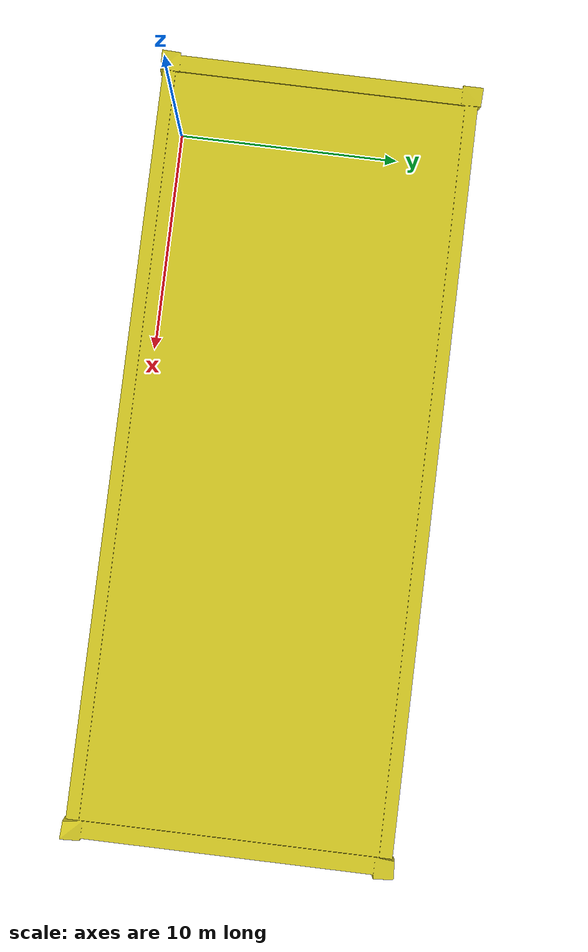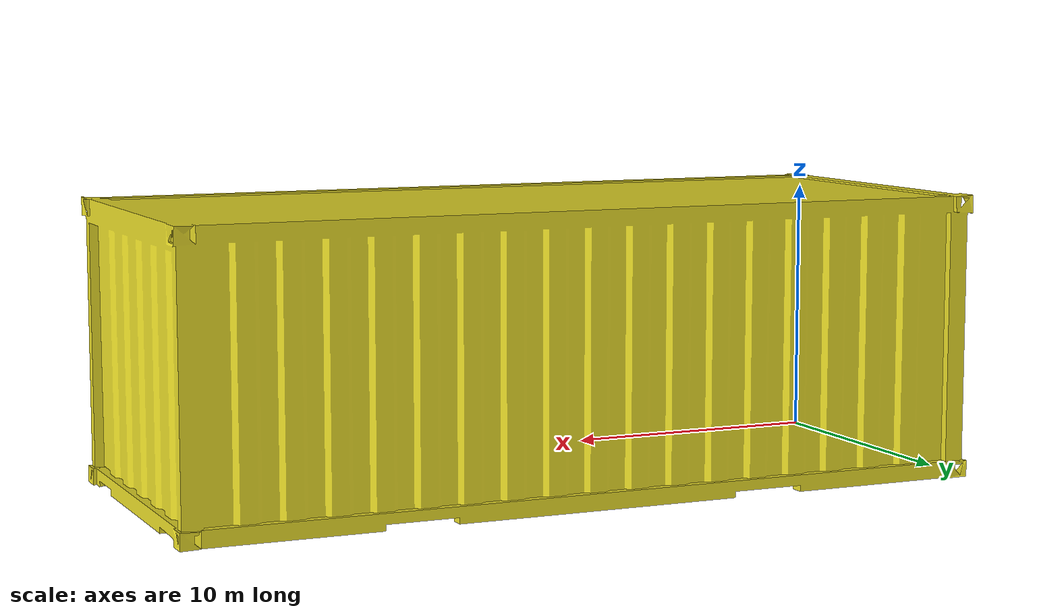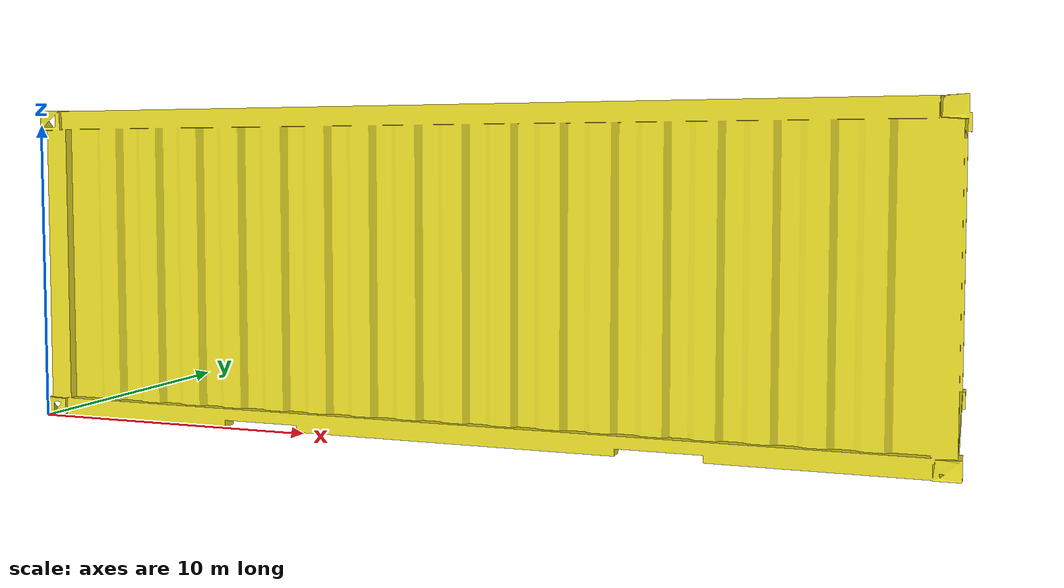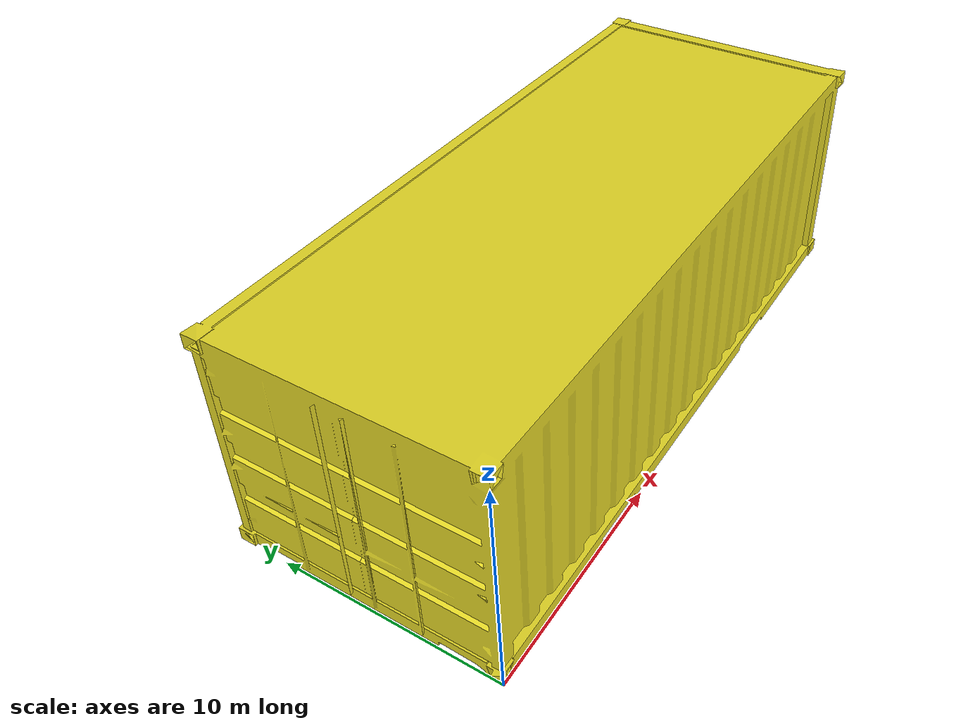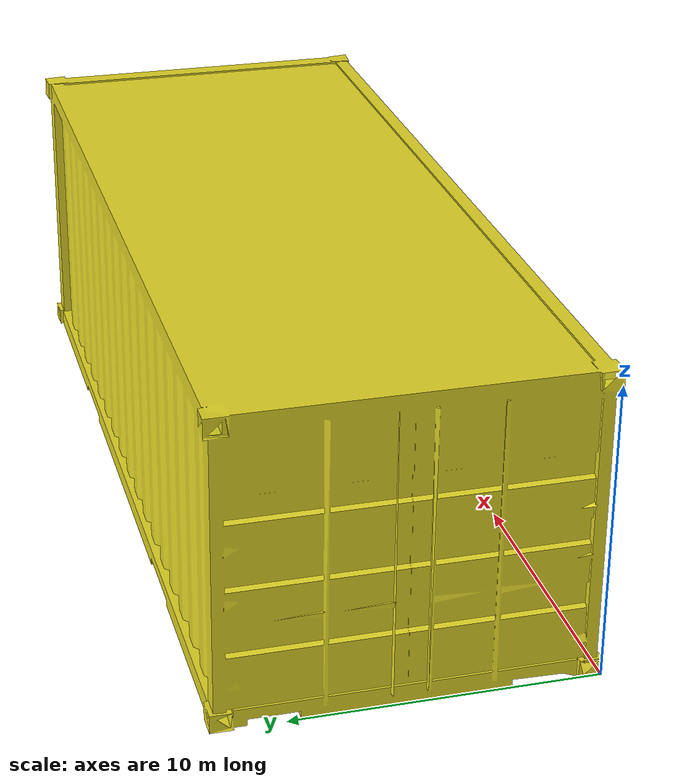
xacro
<?xml version="1.0"?>

<robot name="container" xmlns:xacro="http://ros.org/wiki/xacro">

  <link name="world"></link>

    <link name='container_base'>

      <inertial>
        <mass value="500" />
        <origin rpy="0 0 0" xyz="0 0 0"/>
        <inertia
          ixx="6.71747915" ixy="0.00002148" ixz="-0.00000024"
          iyx="0.00002148" iyy="6.71747915" iyz="-0.17180670"
          izx="-0.00000024" izy="0" izz="6.71747915"/>
      </inertial>

      <visual>
        <origin xyz="0 0 0" rpy="0 0 0" />
        <geometry>
           <mesh filename="package://uav_frontier_exploration_3d/models/container/meshes/container_mesh_1000.dae"
            scale="5 5 4" />
        </geometry>
      </visual>

      <collision name='collision'>
        <origin xyz="0 0 0" rpy="0 0 0"/>
        <geometry>
           <mesh filename="package://uav_frontier_exploration_3d/models/container/meshes/container_mesh_1000.dae"
            scale="5 5 4" />
        </geometry>
      </collision>
    </link>

    <joint name="joint_container_base" type="fixed">
        <origin xyz="0 0 0.01" rpy="0 0 0"/>
        <parent link="world"/>
        <child link="container_base"/>
    </joint>

  <gazebo reference="container_base">
    <material>Gazebo/Yellow</material>
  </gazebo>
  <gazebo>
    <static>true</static>
  </gazebo>

</robot>
